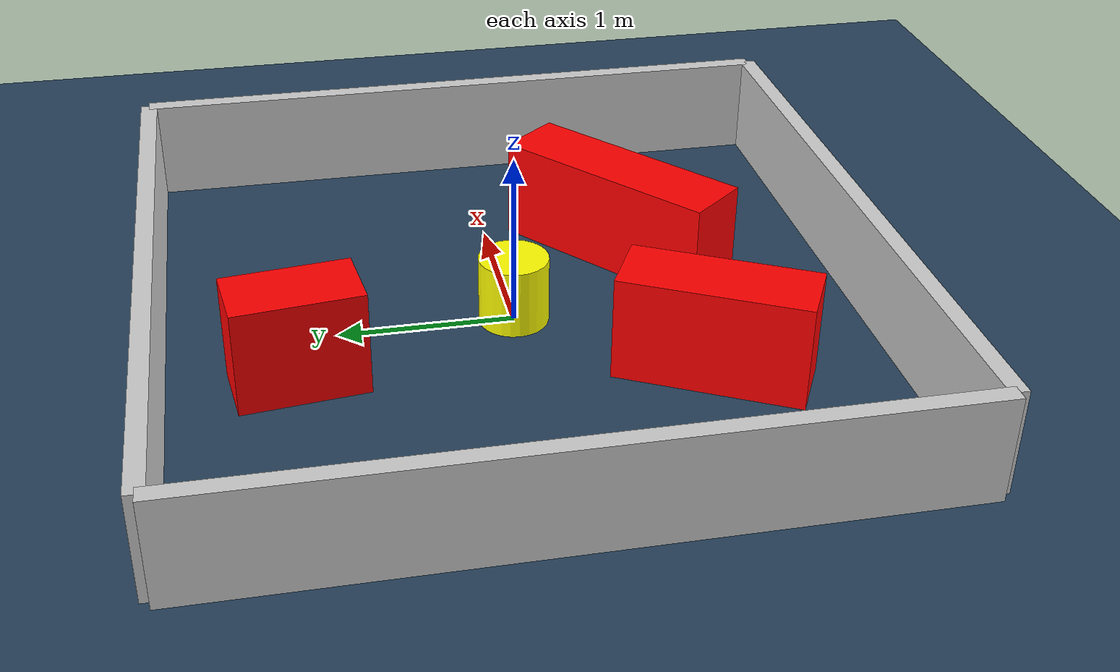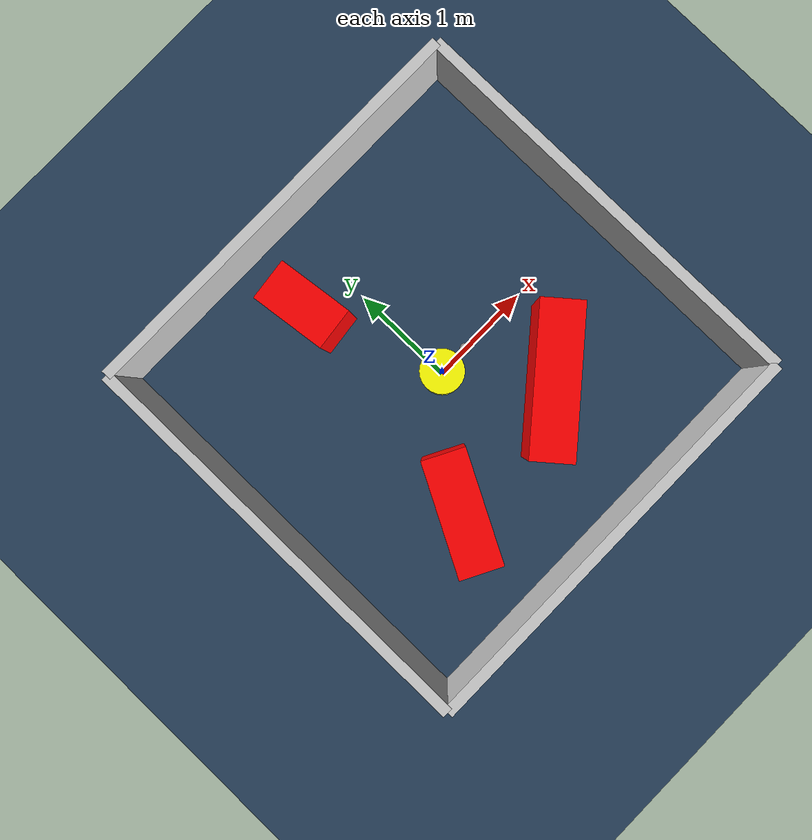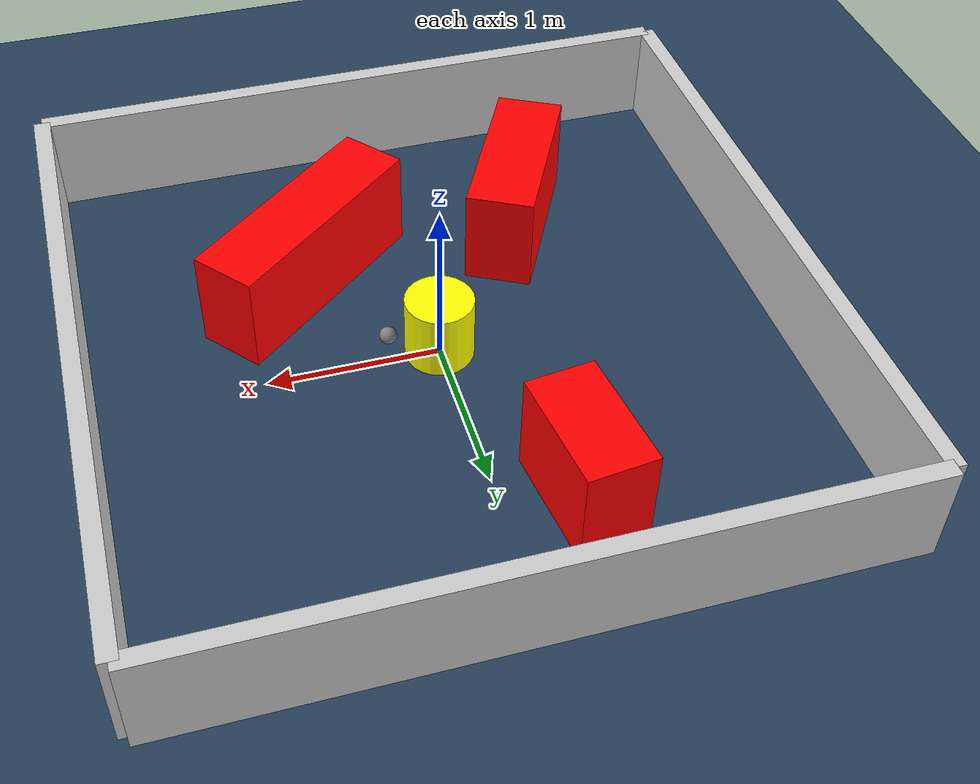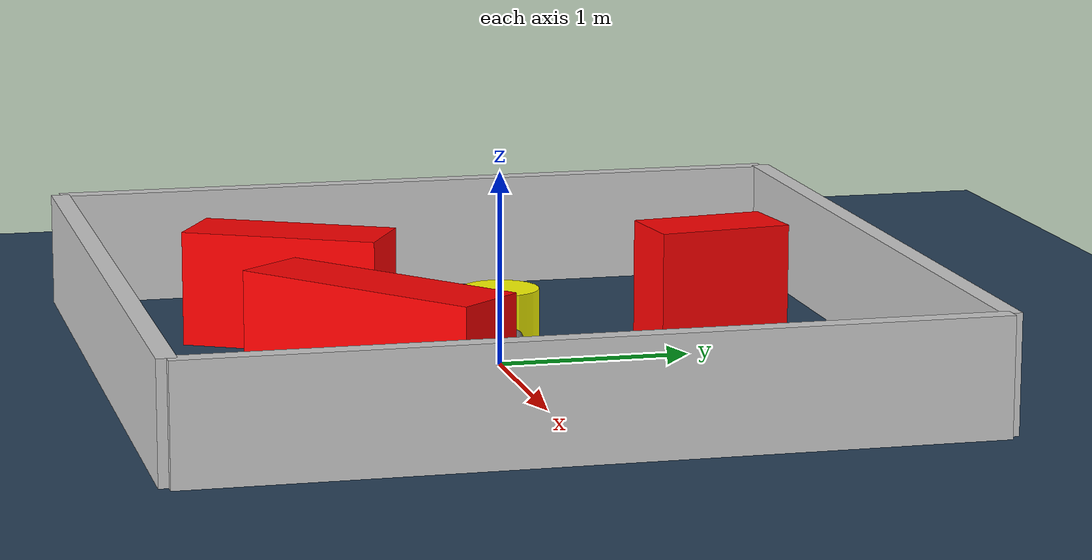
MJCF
<?xml version="1.0" ?>
<mujoco model="generated_environment">
  <option timestep="0.01" integrator="RK4" cone="elliptic"/>
  <default>
    <geom density="1"/>
  </default>
  <asset>
    <texture builtin="gradient" height="3072" rgb1="0.3 0.5 0.7" rgb2="0 0 0" type="skybox" width="512"/>
    <texture builtin="checker" height="300" mark="edge" markrgb="0.8 0.8 0.8" name="groundplane" rgb1="0.2 0.3 0.4" rgb2="0.1 0.2 0.3" type="2d" width="300"/>
    <material name="groundplane" reflectance="0.2" texrepeat="5 5" texture="groundplane" texuniform="true"/>
    <material name="robot" rgba="0.0 1.0 0.0 1"/>
  </asset>
  <worldbody>
    <light dir="0 0 -1" directional="true" pos="0 0 1.5"/>
    <geom condim="4" friction="1.0 0.005 0.001" material="groundplane" name="floor" size="0 0 0.05" type="plane"/>
    <body name="walls">
      <geom name="wall_1" condim="4" pos="-2.0 0.0 0.3" rgba="0.800000011920929 0.800000011920929 0.800000011920929 1.0" size="0.05 2.0 0.3" type="box"/>
      <geom name="wall_2" condim="4" pos="2.0 0.0 0.3" rgba="0.800000011920929 0.800000011920929 0.800000011920929 1.0" size="0.05 2.0 0.3" type="box"/>
      <geom name="wall_3" condim="4" pos="0.0 -2.0 0.3" rgba="0.800000011920929 0.800000011920929 0.800000011920929 1.0" size="2.0 0.05 0.3" type="box"/>
      <geom name="wall_4" condim="4" pos="0.0 2.0 0.3" rgba="0.800000011920929 0.800000011920929 0.800000011920929 1.0" size="2.0 0.05 0.3" type="box"/>
    </body>
    <body name="robot">
      <joint name="joint_x" type="slide" pos="0 0 0" axis="1 0 0"/>
      <joint name="joint_y" type="slide" pos="0 0 0" axis="0 1 0"/>
      <geom name="robot" type="sphere" pos="0.3 0.0 0.2" size="0.05" mass="5." friction="1.0 0.005 0.0001" condim="4" rgba="0.5 0.5 0.5 1.0"/>
      <site name="sensor_ball"/>
    </body>
    <body name="obstacle_movable_1">
      <geom name="obstacle_movable_1" condim="4" pos="0.0 0.0 0.2" euler="0 0 0.0" friction="1.0 0.005 0.001" rgba="1.0 1.0 0.0 1.0" size="0.2 0.2 0.0" type="cylinder" mass="0.1"/>
      <joint type="free"/>
    </body>
    <body name="obstacle_2_static">
      <geom name="obstacle_2_static" condim="4" pos="-0.7441085929585775 -0.9553754600314519 0.3" euler="0 0 62.09449765167051" friction="1.0 0.005 0.001" rgba="1 0 0 1" size="0.5216942442296043 0.2 0.3" type="box"/>
    </body>
    <body name="obstacle_3_static">
      <geom name="obstacle_3_static" condim="4" pos="0.6163605884008991 -0.758703205454716 0.3" euler="0 0 39.688288307197446" friction="1.0 0.005 0.001" rgba="1 0 0 1" size="0.6962115154101604 0.2 0.3" type="box"/>
    </body>
    <body name="obstacle_4_static">
      <geom name="obstacle_4_static" condim="4" pos="-0.4273185219216886 1.2449708799324803 0.3" euler="0 0 277.04899703605406" friction="1.0 0.005 0.001" rgba="1 0 0 1" size="0.35594763767919935 0.2 0.3" type="box"/>
    </body>
  </worldbody>
  <actuator>
    <motor name="actuator_x" joint="joint_x" gear="1" ctrlrange="-1 1"/>
    <motor name="actuator_y" joint="joint_y" gear="1" ctrlrange="-1 1"/>
  </actuator>
</mujoco>
